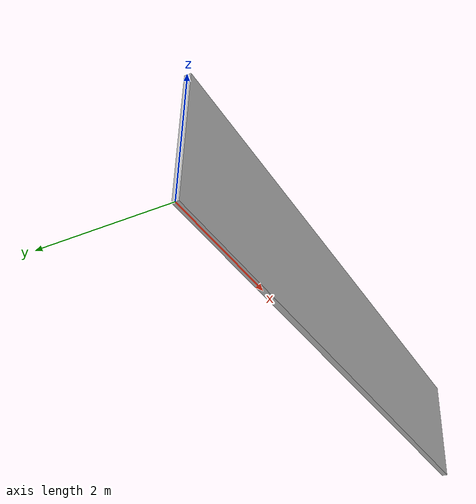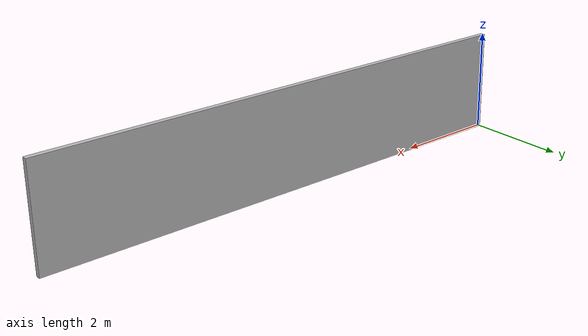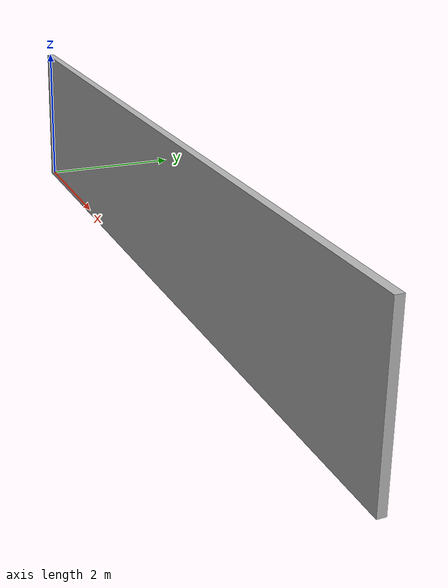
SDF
<?xml version="1.0" ?>
<sdf version="1.6">
  <model name="20mwall">
    <static>true</static>
    <pose>0 0 0 0 0 0</pose>
    <link name="link">
      <collision name="collision">
        <geometry>
          <mesh>
            <scale>0.5 0.5 0.5</scale>
            <uri>model://20mwall/20mwall.stl</uri>
          </mesh>
        </geometry>
        <surface>
          <friction>
            <ode>
              <mu>100</mu>
              <mu2>50</mu2>
            </ode>
          </friction>
        </surface>
      </collision>
      <visual name="visual">
        <geometry>
          <mesh>
            <scale>0.5 0.5 0.5</scale>
            <uri>model://20mwall/20mwall.stl</uri>
          </mesh>
        </geometry>
      </visual>
    </link>
  </model>
</sdf>
